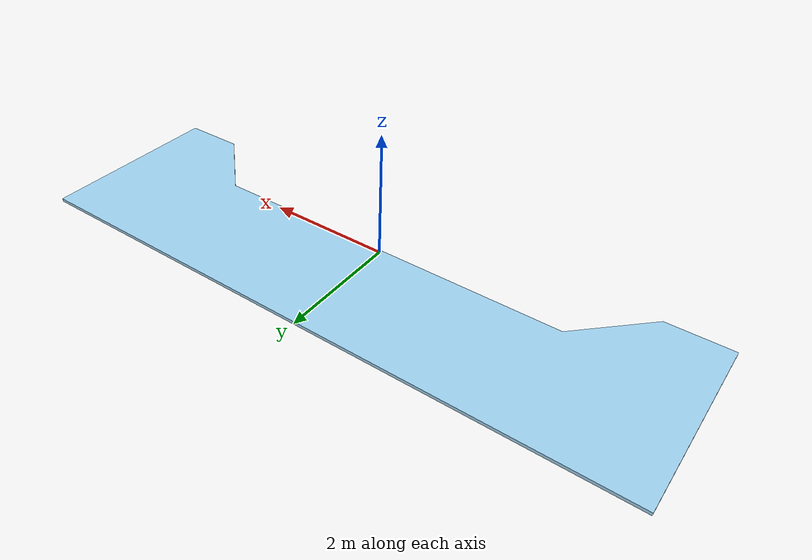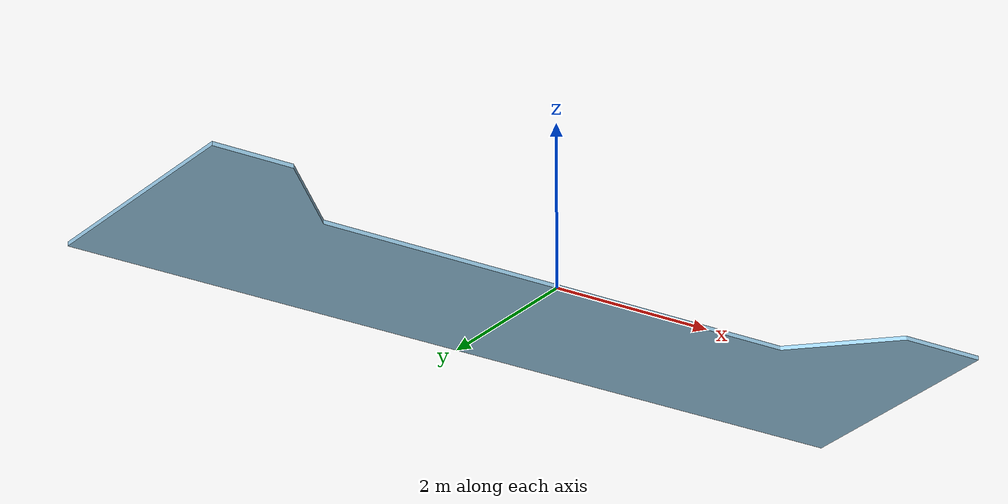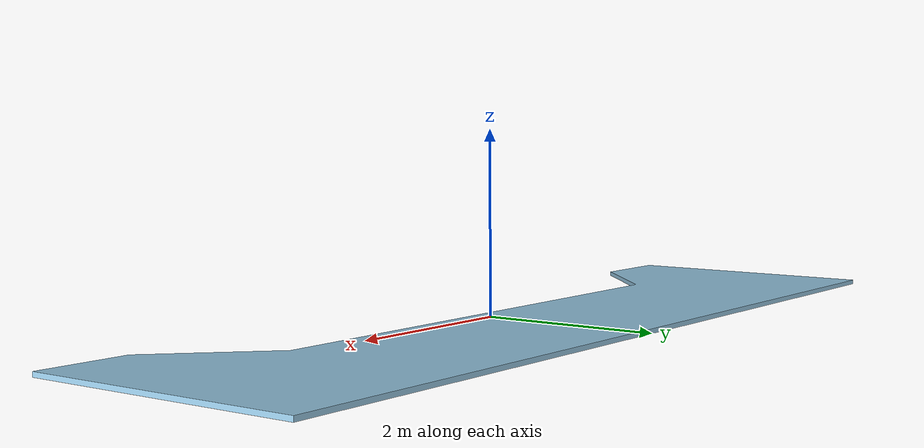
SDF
<?xml version="1.0"?>
<sdf version="1.5">
  <model name= "horiz_web_frame" >
    <static>true</static>
    <link name="link">
      <collision name="collision">
        <geometry>
          <mesh>
            <uri>model://horiz_web_frame/meshes/horiz_web_frame.dae</uri>
          </mesh>
        </geometry>
      </collision>
      <visual name="visual">
        <geometry>
          <mesh>
            <uri>model://horiz_web_frame/meshes/horiz_web_frame.dae</uri>
          </mesh>
        </geometry>
      </visual>
    </link>
  </model>
</sdf>
